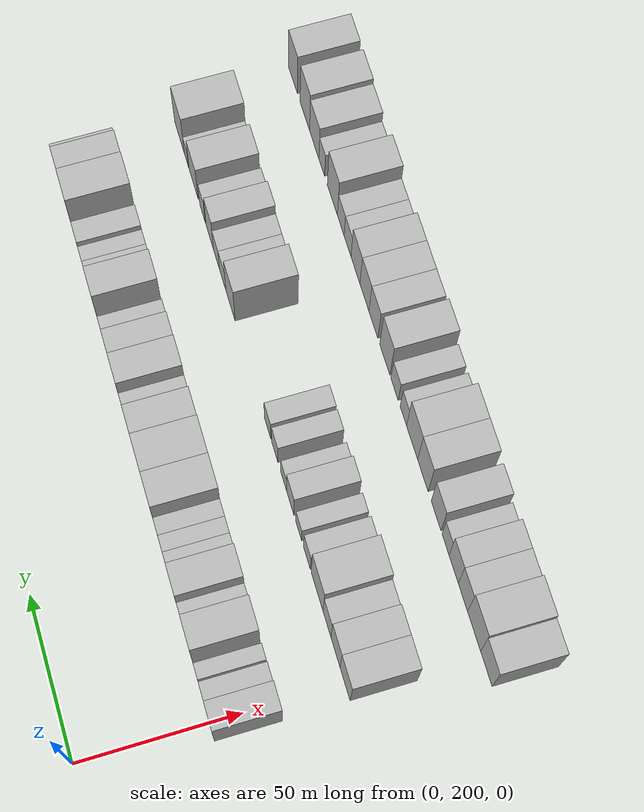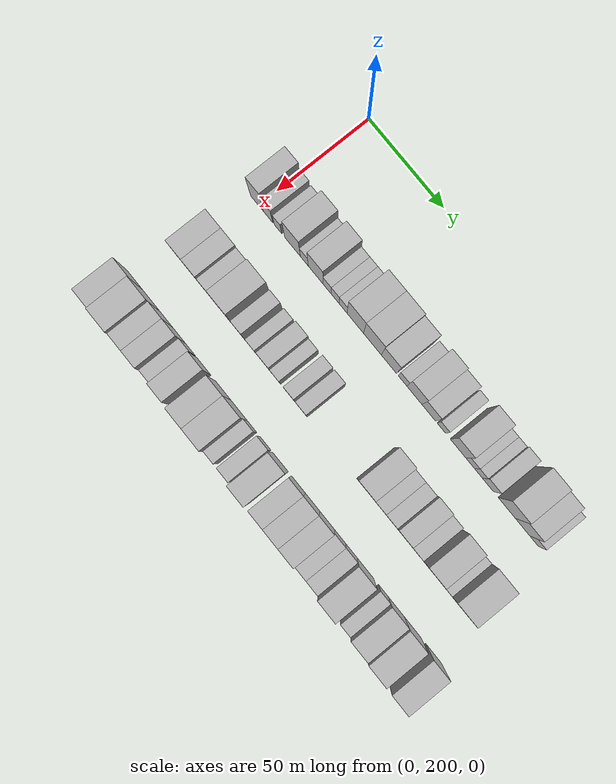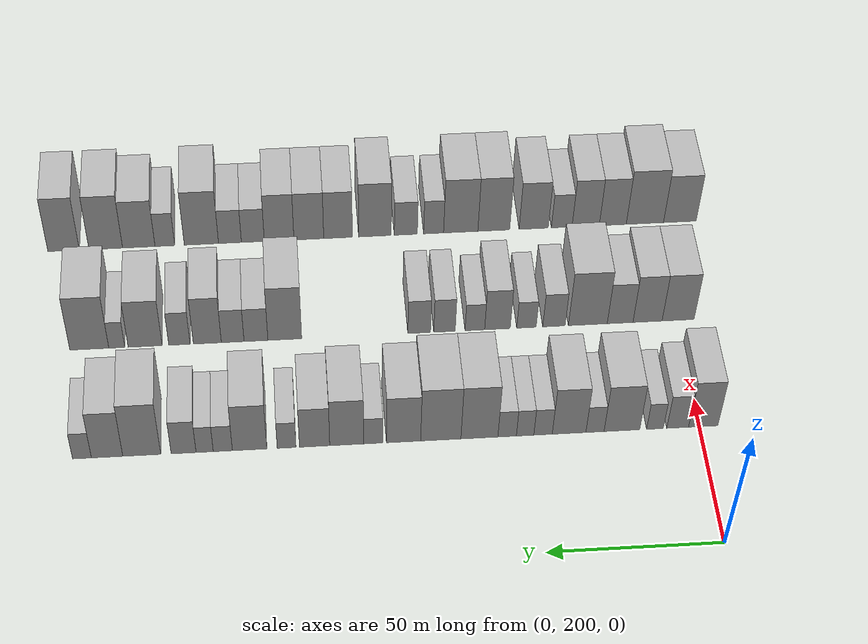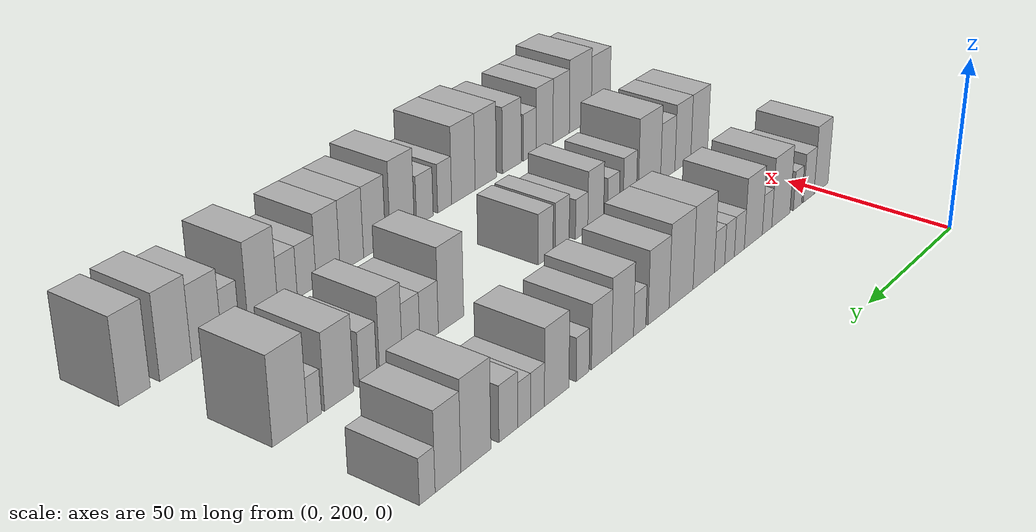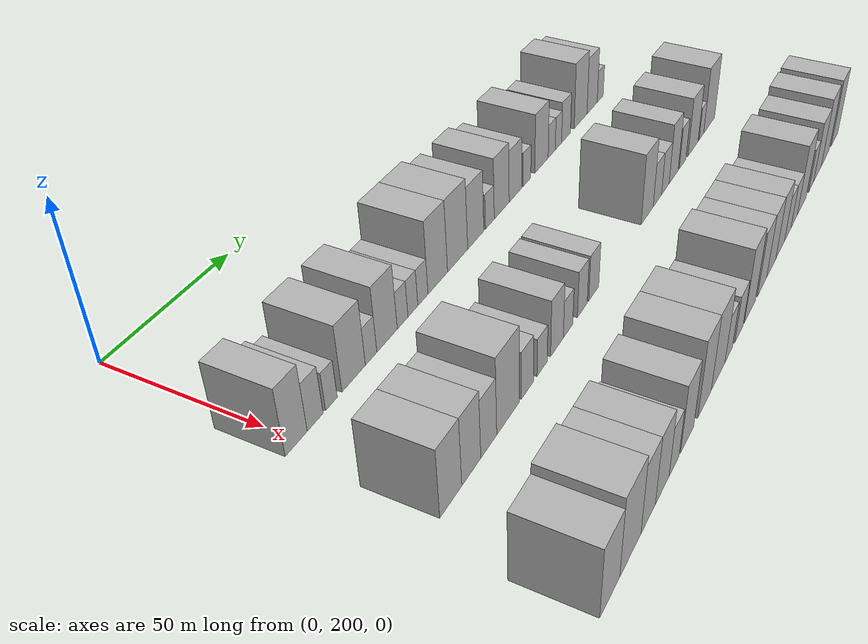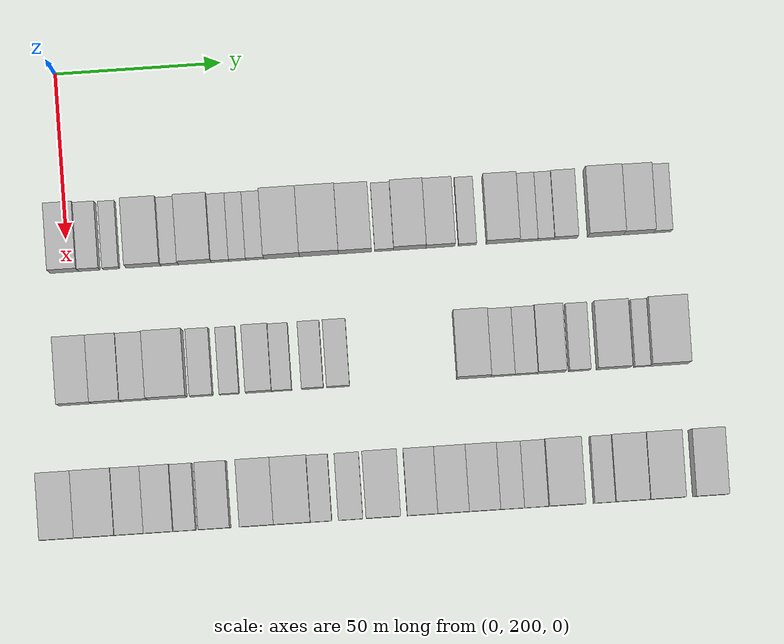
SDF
<sdf version="1.6">
 <world name="default">
  <model name="building_63">
   <static>1</static>
   <pose>50.0000 198.9835 0 0.000000 0.000000 0.000000</pose>
   <link name="link">
    <pose>0 0 10.50 0 0 0</pose>
    <collision name="collision"><geometry><box><size>20.0000 8.6089 21.0000</size></box></geometry></collision>
    <visual name="visual">
     <cast_shadows>0</cast_shadows>
     <geometry><box><size>20.0000 8.6089 21.0000</size></box></geometry>
     <material>
      <script>
       <uri>model://HANNAS_wall/materials/scripts</uri>
       <uri>model://HANNAS_wall/materials/textures</uri>
       <name>vrc/HANNAS_wall</name>
      </script>
     </material>
    </visual>
   </link>
  </model>
  <model name="building_64">
   <static>1</static>
   <pose>50.0000 206.4948 0 0.000000 0.000000 0.000000</pose>
   <link name="link">
    <pose>0 0 7.50 0 0 0</pose>
    <collision name="collision"><geometry><box><size>20.0000 6.4135 15.0000</size></box></geometry></collision>
    <visual name="visual">
     <cast_shadows>0</cast_shadows>
     <geometry><box><size>20.0000 6.4135 15.0000</size></box></geometry>
     <material>
      <script>
       <uri>model://HANNAS_wall/materials/scripts</uri>
       <uri>model://HANNAS_wall/materials/textures</uri>
       <name>vrc/HANNAS_wall</name>
      </script>
     </material>
    </visual>
   </link>
  </model>
  <model name="building_65">
   <static>1</static>
   <pose>50.0000 213.1671 0 0.000000 0.000000 0.000000</pose>
   <link name="link">
    <pose>0 0 6.00 0 0 0</pose>
    <collision name="collision"><geometry><box><size>20.0000 4.9312 12.0000</size></box></geometry></collision>
    <visual name="visual">
     <cast_shadows>0</cast_shadows>
     <geometry><box><size>20.0000 4.9312 12.0000</size></box></geometry>
     <material>
      <script>
       <uri>model://HANNAS_wall/materials/scripts</uri>
       <uri>model://HANNAS_wall/materials/textures</uri>
       <name>vrc/HANNAS_wall</name>
      </script>
     </material>
    </visual>
   </link>
  </model>
  <model name="building_66">
   <static>1</static>
   <pose>50.0000 222.8594 0 0.000000 0.000000 0.000000</pose>
   <link name="link">
    <pose>0 0 10.50 0 0 0</pose>
    <collision name="collision"><geometry><box><size>20.0000 10.4533 21.0000</size></box></geometry></collision>
    <visual name="visual">
     <cast_shadows>0</cast_shadows>
     <geometry><box><size>20.0000 10.4533 21.0000</size></box></geometry>
     <material>
      <script>
       <uri>model://HANNAS_wall/materials/scripts</uri>
       <uri>model://HANNAS_wall/materials/textures</uri>
       <name>vrc/HANNAS_wall</name>
      </script>
     </material>
    </visual>
   </link>
  </model>
  <model name="building_67">
   <static>1</static>
   <pose>50.0000 230.7451 0 0.000000 0.000000 0.000000</pose>
   <link name="link">
    <pose>0 0 6.00 0 0 0</pose>
    <collision name="collision"><geometry><box><size>20.0000 5.3181 12.0000</size></box></geometry></collision>
    <visual name="visual">
     <cast_shadows>0</cast_shadows>
     <geometry><box><size>20.0000 5.3181 12.0000</size></box></geometry>
     <material>
      <script>
       <uri>model://HANNAS_wall/materials/scripts</uri>
       <uri>model://HANNAS_wall/materials/textures</uri>
       <name>vrc/HANNAS_wall</name>
      </script>
     </material>
    </visual>
   </link>
  </model>
  <model name="building_68">
   <static>1</static>
   <pose>50.0000 238.3316 0 0.000000 0.000000 0.000000</pose>
   <link name="link">
    <pose>0 0 10.50 0 0 0</pose>
    <collision name="collision"><geometry><box><size>20.0000 9.8549 21.0000</size></box></geometry></collision>
    <visual name="visual">
     <cast_shadows>0</cast_shadows>
     <geometry><box><size>20.0000 9.8549 21.0000</size></box></geometry>
     <material>
      <script>
       <uri>model://HANNAS_wall/materials/scripts</uri>
       <uri>model://HANNAS_wall/materials/textures</uri>
       <name>vrc/HANNAS_wall</name>
      </script>
     </material>
    </visual>
   </link>
  </model>
  <model name="building_69">
   <static>1</static>
   <pose>50.0000 245.9419 0 0.000000 0.000000 0.000000</pose>
   <link name="link">
    <pose>0 0 6.00 0 0 0</pose>
    <collision name="collision"><geometry><box><size>20.0000 5.3658 12.0000</size></box></geometry></collision>
    <visual name="visual">
     <cast_shadows>0</cast_shadows>
     <geometry><box><size>20.0000 5.3658 12.0000</size></box></geometry>
     <material>
      <script>
       <uri>model://HANNAS_wall/materials/scripts</uri>
       <uri>model://HANNAS_wall/materials/textures</uri>
       <name>vrc/HANNAS_wall</name>
      </script>
     </material>
    </visual>
   </link>
  </model>
  <model name="building_70">
   <static>1</static>
   <pose>50.0000 251.1717 0 0.000000 0.000000 0.000000</pose>
   <link name="link">
    <pose>0 0 6.00 0 0 0</pose>
    <collision name="collision"><geometry><box><size>20.0000 5.0938 12.0000</size></box></geometry></collision>
    <visual name="visual">
     <cast_shadows>0</cast_shadows>
     <geometry><box><size>20.0000 5.0938 12.0000</size></box></geometry>
     <material>
      <script>
       <uri>model://HANNAS_wall/materials/scripts</uri>
       <uri>model://HANNAS_wall/materials/textures</uri>
       <name>vrc/HANNAS_wall</name>
      </script>
     </material>
    </visual>
   </link>
  </model>
  <model name="building_71">
   <static>1</static>
   <pose>50.0000 256.4149 0 0.000000 0.000000 0.000000</pose>
   <link name="link">
    <pose>0 0 6.00 0 0 0</pose>
    <collision name="collision"><geometry><box><size>20.0000 5.3924 12.0000</size></box></geometry></collision>
    <visual name="visual">
     <cast_shadows>0</cast_shadows>
     <geometry><box><size>20.0000 5.3924 12.0000</size></box></geometry>
     <material>
      <script>
       <uri>model://HANNAS_wall/materials/scripts</uri>
       <uri>model://HANNAS_wall/materials/textures</uri>
       <name>vrc/HANNAS_wall</name>
      </script>
     </material>
    </visual>
   </link>
  </model>
  <model name="building_72">
   <static>1</static>
   <pose>50.0000 264.4994 0 0.000000 0.000000 0.000000</pose>
   <link name="link">
    <pose>0 0 12.00 0 0 0</pose>
    <collision name="collision"><geometry><box><size>20.0000 10.7767 24.0000</size></box></geometry></collision>
    <visual name="visual">
     <cast_shadows>0</cast_shadows>
     <geometry><box><size>20.0000 10.7767 24.0000</size></box></geometry>
     <material>
      <script>
       <uri>model://HANNAS_wall/materials/scripts</uri>
       <uri>model://HANNAS_wall/materials/textures</uri>
       <name>vrc/HANNAS_wall</name>
      </script>
     </material>
    </visual>
   </link>
  </model>
  <model name="building_73">
   <static>1</static>
   <pose>50.0000 275.7507 0 0.000000 0.000000 0.000000</pose>
   <link name="link">
    <pose>0 0 12.00 0 0 0</pose>
    <collision name="collision"><geometry><box><size>20.0000 11.7258 24.0000</size></box></geometry></collision>
    <visual name="visual">
     <cast_shadows>0</cast_shadows>
     <geometry><box><size>20.0000 11.7258 24.0000</size></box></geometry>
     <material>
      <script>
       <uri>model://HANNAS_wall/materials/scripts</uri>
       <uri>model://HANNAS_wall/materials/textures</uri>
       <name>vrc/HANNAS_wall</name>
      </script>
     </material>
    </visual>
   </link>
  </model>
  <model name="building_74">
   <static>1</static>
   <pose>50.0000 286.5745 0 0.000000 0.000000 0.000000</pose>
   <link name="link">
    <pose>0 0 10.50 0 0 0</pose>
    <collision name="collision"><geometry><box><size>20.0000 9.9219 21.0000</size></box></geometry></collision>
    <visual name="visual">
     <cast_shadows>0</cast_shadows>
     <geometry><box><size>20.0000 9.9219 21.0000</size></box></geometry>
     <material>
      <script>
       <uri>model://HANNAS_wall/materials/scripts</uri>
       <uri>model://HANNAS_wall/materials/textures</uri>
       <name>vrc/HANNAS_wall</name>
      </script>
     </material>
    </visual>
   </link>
  </model>
  <model name="building_75">
   <static>1</static>
   <pose>50.0000 295.3598 0 0.000000 0.000000 0.000000</pose>
   <link name="link">
    <pose>0 0 6.00 0 0 0</pose>
    <collision name="collision"><geometry><box><size>20.0000 5.6487 12.0000</size></box></geometry></collision>
    <visual name="visual">
     <cast_shadows>0</cast_shadows>
     <geometry><box><size>20.0000 5.6487 12.0000</size></box></geometry>
     <material>
      <script>
       <uri>model://HANNAS_wall/materials/scripts</uri>
       <uri>model://HANNAS_wall/materials/textures</uri>
       <name>vrc/HANNAS_wall</name>
      </script>
     </material>
    </visual>
   </link>
  </model>
  <model name="building_76">
   <static>1</static>
   <pose>50.0000 303.0805 0 0.000000 0.000000 0.000000</pose>
   <link name="link">
    <pose>0 0 10.50 0 0 0</pose>
    <collision name="collision"><geometry><box><size>20.0000 9.7928 21.0000</size></box></geometry></collision>
    <visual name="visual">
     <cast_shadows>0</cast_shadows>
     <geometry><box><size>20.0000 9.7928 21.0000</size></box></geometry>
     <material>
      <script>
       <uri>model://HANNAS_wall/materials/scripts</uri>
       <uri>model://HANNAS_wall/materials/textures</uri>
       <name>vrc/HANNAS_wall</name>
      </script>
     </material>
    </visual>
   </link>
  </model>
  <model name="building_77">
   <static>1</static>
   <pose>50.0000 312.3498 0 0.000000 0.000000 0.000000</pose>
   <link name="link">
    <pose>0 0 9.00 0 0 0</pose>
    <collision name="collision"><geometry><box><size>20.0000 8.7457 18.0000</size></box></geometry></collision>
    <visual name="visual">
     <cast_shadows>0</cast_shadows>
     <geometry><box><size>20.0000 8.7457 18.0000</size></box></geometry>
     <material>
      <script>
       <uri>model://HANNAS_wall/materials/scripts</uri>
       <uri>model://HANNAS_wall/materials/textures</uri>
       <name>vrc/HANNAS_wall</name>
      </script>
     </material>
    </visual>
   </link>
  </model>
  <model name="building_78">
   <static>1</static>
   <pose>50.0000 320.4351 0 0.000000 0.000000 0.000000</pose>
   <link name="link">
    <pose>0 0 6.00 0 0 0</pose>
    <collision name="collision"><geometry><box><size>20.0000 5.4249 12.0000</size></box></geometry></collision>
    <visual name="visual">
     <cast_shadows>0</cast_shadows>
     <geometry><box><size>20.0000 5.4249 12.0000</size></box></geometry>
     <material>
      <script>
       <uri>model://HANNAS_wall/materials/scripts</uri>
       <uri>model://HANNAS_wall/materials/textures</uri>
       <name>vrc/HANNAS_wall</name>
      </script>
     </material>
    </visual>
   </link>
  </model>
  <model name="building_79">
   <static>1</static>
   <pose>50.0000 331.1154 0 0.000000 0.000000 0.000000</pose>
   <link name="link">
    <pose>0 0 10.50 0 0 0</pose>
    <collision name="collision"><geometry><box><size>20.0000 9.9357 21.0000</size></box></geometry></collision>
    <visual name="visual">
     <cast_shadows>0</cast_shadows>
     <geometry><box><size>20.0000 9.9357 21.0000</size></box></geometry>
     <material>
      <script>
       <uri>model://HANNAS_wall/materials/scripts</uri>
       <uri>model://HANNAS_wall/materials/textures</uri>
       <name>vrc/HANNAS_wall</name>
      </script>
     </material>
    </visual>
   </link>
  </model>
  <model name="building_80">
   <static>1</static>
   <pose>50.0000 338.8402 0 0.000000 0.000000 0.000000</pose>
   <link name="link">
    <pose>0 0 6.00 0 0 0</pose>
    <collision name="collision"><geometry><box><size>20.0000 5.5140 12.0000</size></box></geometry></collision>
    <visual name="visual">
     <cast_shadows>0</cast_shadows>
     <geometry><box><size>20.0000 5.5140 12.0000</size></box></geometry>
     <material>
      <script>
       <uri>model://HANNAS_wall/materials/scripts</uri>
       <uri>model://HANNAS_wall/materials/textures</uri>
       <name>vrc/HANNAS_wall</name>
      </script>
     </material>
    </visual>
   </link>
  </model>
  <model name="building_81">
   <static>1</static>
   <pose>50.0000 344.0744 0 0.000000 0.000000 0.000000</pose>
   <link name="link">
    <pose>0 0 6.00 0 0 0</pose>
    <collision name="collision"><geometry><box><size>20.0000 4.9543 12.0000</size></box></geometry></collision>
    <visual name="visual">
     <cast_shadows>0</cast_shadows>
     <geometry><box><size>20.0000 4.9543 12.0000</size></box></geometry>
     <material>
      <script>
       <uri>model://HANNAS_wall/materials/scripts</uri>
       <uri>model://HANNAS_wall/materials/textures</uri>
       <name>vrc/HANNAS_wall</name>
      </script>
     </material>
    </visual>
   </link>
  </model>
  <model name="building_82">
   <static>1</static>
   <pose>50.0000 350.1334 0 0.000000 0.000000 0.000000</pose>
   <link name="link">
    <pose>0 0 7.50 0 0 0</pose>
    <collision name="collision"><geometry><box><size>20.0000 7.1637 15.0000</size></box></geometry></collision>
    <visual name="visual">
     <cast_shadows>0</cast_shadows>
     <geometry><box><size>20.0000 7.1637 15.0000</size></box></geometry>
     <material>
      <script>
       <uri>model://HANNAS_wall/materials/scripts</uri>
       <uri>model://HANNAS_wall/materials/textures</uri>
       <name>vrc/HANNAS_wall</name>
      </script>
     </material>
    </visual>
   </link>
  </model>
  <model name="building_83">
   <static>1</static>
   <pose>50.0000 362.1607 0 0.000000 0.000000 0.000000</pose>
   <link name="link">
    <pose>0 0 12.00 0 0 0</pose>
    <collision name="collision"><geometry><box><size>20.0000 10.8908 24.0000</size></box></geometry></collision>
    <visual name="visual">
     <cast_shadows>0</cast_shadows>
     <geometry><box><size>20.0000 10.8908 24.0000</size></box></geometry>
     <material>
      <script>
       <uri>model://HANNAS_wall/materials/scripts</uri>
       <uri>model://HANNAS_wall/materials/textures</uri>
       <name>vrc/HANNAS_wall</name>
      </script>
     </material>
    </visual>
   </link>
  </model>
  <model name="building_84">
   <static>1</static>
   <pose>50.0000 372.1131 0 0.000000 0.000000 0.000000</pose>
   <link name="link">
    <pose>0 0 10.50 0 0 0</pose>
    <collision name="collision"><geometry><box><size>20.0000 9.0141 21.0000</size></box></geometry></collision>
    <visual name="visual">
     <cast_shadows>0</cast_shadows>
     <geometry><box><size>20.0000 9.0141 21.0000</size></box></geometry>
     <material>
      <script>
       <uri>model://HANNAS_wall/materials/scripts</uri>
       <uri>model://HANNAS_wall/materials/textures</uri>
       <name>vrc/HANNAS_wall</name>
      </script>
     </material>
    </visual>
   </link>
  </model>
  <model name="building_85">
   <static>1</static>
   <pose>50.0000 379.3196 0 0.000000 0.000000 0.000000</pose>
   <link name="link">
    <pose>0 0 6.00 0 0 0</pose>
    <collision name="collision"><geometry><box><size>20.0000 5.3989 12.0000</size></box></geometry></collision>
    <visual name="visual">
     <cast_shadows>0</cast_shadows>
     <geometry><box><size>20.0000 5.3989 12.0000</size></box></geometry>
     <material>
      <script>
       <uri>model://HANNAS_wall/materials/scripts</uri>
       <uri>model://HANNAS_wall/materials/textures</uri>
       <name>vrc/HANNAS_wall</name>
      </script>
     </material>
    </visual>
   </link>
  </model>
  <model name="building_147">
   <static>1</static>
   <pose>90.0000 199.6882 0 0.000000 0.000000 0.000000</pose>
   <link name="link">
    <pose>0 0 10.50 0 0 0</pose>
    <collision name="collision"><geometry><box><size>20.0000 9.8433 21.0000</size></box></geometry></collision>
    <visual name="visual">
     <cast_shadows>0</cast_shadows>
     <geometry><box><size>20.0000 9.8433 21.0000</size></box></geometry>
     <material>
      <script>
       <uri>model://HANNAS_wall/materials/scripts</uri>
       <uri>model://HANNAS_wall/materials/textures</uri>
       <name>vrc/HANNAS_wall</name>
      </script>
     </material>
    </visual>
   </link>
  </model>
  <model name="building_148">
   <static>1</static>
   <pose>90.0000 209.0764 0 0.000000 0.000000 0.000000</pose>
   <link name="link">
    <pose>0 0 10.50 0 0 0</pose>
    <collision name="collision"><geometry><box><size>20.0000 8.9332 21.0000</size></box></geometry></collision>
    <visual name="visual">
     <cast_shadows>0</cast_shadows>
     <geometry><box><size>20.0000 8.9332 21.0000</size></box></geometry>
     <material>
      <script>
       <uri>model://HANNAS_wall/materials/scripts</uri>
       <uri>model://HANNAS_wall/materials/textures</uri>
       <name>vrc/HANNAS_wall</name>
      </script>
     </material>
    </visual>
   </link>
  </model>
  <model name="building_149">
   <static>1</static>
   <pose>90.0000 217.4925 0 0.000000 0.000000 0.000000</pose>
   <link name="link">
    <pose>0 0 9.00 0 0 0</pose>
    <collision name="collision"><geometry><box><size>20.0000 7.8991 18.0000</size></box></geometry></collision>
    <visual name="visual">
     <cast_shadows>0</cast_shadows>
     <geometry><box><size>20.0000 7.8991 18.0000</size></box></geometry>
     <material>
      <script>
       <uri>model://HANNAS_wall/materials/scripts</uri>
       <uri>model://HANNAS_wall/materials/textures</uri>
       <name>vrc/HANNAS_wall</name>
      </script>
     </material>
    </visual>
   </link>
  </model>
  <model name="building_150">
   <static>1</static>
   <pose>90.0000 227.3966 0 0.000000 0.000000 0.000000</pose>
   <link name="link">
    <pose>0 0 12.00 0 0 0</pose>
    <collision name="collision"><geometry><box><size>20.0000 11.9089 24.0000</size></box></geometry></collision>
    <visual name="visual">
     <cast_shadows>0</cast_shadows>
     <geometry><box><size>20.0000 11.9089 24.0000</size></box></geometry>
     <material>
      <script>
       <uri>model://HANNAS_wall/materials/scripts</uri>
       <uri>model://HANNAS_wall/materials/textures</uri>
       <name>vrc/HANNAS_wall</name>
      </script>
     </material>
    </visual>
   </link>
  </model>
  <model name="building_151">
   <static>1</static>
   <pose>90.0000 237.7785 0 0.000000 0.000000 0.000000</pose>
   <link name="link">
    <pose>0 0 7.50 0 0 0</pose>
    <collision name="collision"><geometry><box><size>20.0000 6.8550 15.0000</size></box></geometry></collision>
    <visual name="visual">
     <cast_shadows>0</cast_shadows>
     <geometry><box><size>20.0000 6.8550 15.0000</size></box></geometry>
     <material>
      <script>
       <uri>model://HANNAS_wall/materials/scripts</uri>
       <uri>model://HANNAS_wall/materials/textures</uri>
       <name>vrc/HANNAS_wall</name>
      </script>
     </material>
    </visual>
   </link>
  </model>
  <model name="building_152">
   <static>1</static>
   <pose>90.0000 246.1682 0 0.000000 0.000000 0.000000</pose>
   <link name="link">
    <pose>0 0 6.00 0 0 0</pose>
    <collision name="collision"><geometry><box><size>20.0000 5.9244 12.0000</size></box></geometry></collision>
    <visual name="visual">
     <cast_shadows>0</cast_shadows>
     <geometry><box><size>20.0000 5.9244 12.0000</size></box></geometry>
     <material>
      <script>
       <uri>model://HANNAS_wall/materials/scripts</uri>
       <uri>model://HANNAS_wall/materials/textures</uri>
       <name>vrc/HANNAS_wall</name>
      </script>
     </material>
    </visual>
   </link>
  </model>
  <model name="building_153">
   <static>1</static>
   <pose>90.0000 255.0304 0 0.000000 0.000000 0.000000</pose>
   <link name="link">
    <pose>0 0 9.00 0 0 0</pose>
    <collision name="collision"><geometry><box><size>20.0000 7.7999 18.0000</size></box></geometry></collision>
    <visual name="visual">
     <cast_shadows>0</cast_shadows>
     <geometry><box><size>20.0000 7.7999 18.0000</size></box></geometry>
     <material>
      <script>
       <uri>model://HANNAS_wall/materials/scripts</uri>
       <uri>model://HANNAS_wall/materials/textures</uri>
       <name>vrc/HANNAS_wall</name>
      </script>
     </material>
    </visual>
   </link>
  </model>
  <model name="building_154">
   <static>1</static>
   <pose>90.0000 261.9214 0 0.000000 0.000000 0.000000</pose>
   <link name="link">
    <pose>0 0 6.00 0 0 0</pose>
    <collision name="collision"><geometry><box><size>20.0000 5.9821 12.0000</size></box></geometry></collision>
    <visual name="visual">
     <cast_shadows>0</cast_shadows>
     <geometry><box><size>20.0000 5.9821 12.0000</size></box></geometry>
     <material>
      <script>
       <uri>model://HANNAS_wall/materials/scripts</uri>
       <uri>model://HANNAS_wall/materials/textures</uri>
       <name>vrc/HANNAS_wall</name>
      </script>
     </material>
    </visual>
   </link>
  </model>
  <model name="building_155">
   <static>1</static>
   <pose>90.0000 271.1778 0 0.000000 0.000000 0.000000</pose>
   <link name="link">
    <pose>0 0 7.50 0 0 0</pose>
    <collision name="collision"><geometry><box><size>20.0000 6.5308 15.0000</size></box></geometry></collision>
    <visual name="visual">
     <cast_shadows>0</cast_shadows>
     <geometry><box><size>20.0000 6.5308 15.0000</size></box></geometry>
     <material>
      <script>
       <uri>model://HANNAS_wall/materials/scripts</uri>
       <uri>model://HANNAS_wall/materials/textures</uri>
       <name>vrc/HANNAS_wall</name>
      </script>
     </material>
    </visual>
   </link>
  </model>
  <model name="building_156">
   <static>1</static>
   <pose>90.0000 278.8805 0 0.000000 0.000000 0.000000</pose>
   <link name="link">
    <pose>0 0 7.50 0 0 0</pose>
    <collision name="collision"><geometry><box><size>20.0000 6.8746 15.0000</size></box></geometry></collision>
    <visual name="visual">
     <cast_shadows>0</cast_shadows>
     <geometry><box><size>20.0000 6.8746 15.0000</size></box></geometry>
     <material>
      <script>
       <uri>model://HANNAS_wall/materials/scripts</uri>
       <uri>model://HANNAS_wall/materials/textures</uri>
       <name>vrc/HANNAS_wall</name>
      </script>
     </material>
    </visual>
   </link>
  </model>
  <model name="building_157">
   <static>1</static>
   <pose>90.0000 319.6241 0 0.000000 0.000000 0.000000</pose>
   <link name="link">
    <pose>0 0 12.00 0 0 0</pose>
    <collision name="collision"><geometry><box><size>20.0000 10.2042 24.0000</size></box></geometry></collision>
    <visual name="visual">
     <cast_shadows>0</cast_shadows>
     <geometry><box><size>20.0000 10.2042 24.0000</size></box></geometry>
     <material>
      <script>
       <uri>model://HANNAS_wall/materials/scripts</uri>
       <uri>model://HANNAS_wall/materials/textures</uri>
       <name>vrc/HANNAS_wall</name>
      </script>
     </material>
    </visual>
   </link>
  </model>
  <model name="building_158">
   <static>1</static>
   <pose>90.0000 328.3345 0 0.000000 0.000000 0.000000</pose>
   <link name="link">
    <pose>0 0 7.50 0 0 0</pose>
    <collision name="collision"><geometry><box><size>20.0000 7.2166 15.0000</size></box></geometry></collision>
    <visual name="visual">
     <cast_shadows>0</cast_shadows>
     <geometry><box><size>20.0000 7.2166 15.0000</size></box></geometry>
     <material>
      <script>
       <uri>model://HANNAS_wall/materials/scripts</uri>
       <uri>model://HANNAS_wall/materials/textures</uri>
       <name>vrc/HANNAS_wall</name>
      </script>
     </material>
    </visual>
   </link>
  </model>
  <model name="building_159">
   <static>1</static>
   <pose>90.0000 335.3641 0 0.000000 0.000000 0.000000</pose>
   <link name="link">
    <pose>0 0 7.50 0 0 0</pose>
    <collision name="collision"><geometry><box><size>20.0000 6.8425 15.0000</size></box></geometry></collision>
    <visual name="visual">
     <cast_shadows>0</cast_shadows>
     <geometry><box><size>20.0000 6.8425 15.0000</size></box></geometry>
     <material>
      <script>
       <uri>model://HANNAS_wall/materials/scripts</uri>
       <uri>model://HANNAS_wall/materials/textures</uri>
       <name>vrc/HANNAS_wall</name>
      </script>
     </material>
    </visual>
   </link>
  </model>
  <model name="building_160">
   <static>1</static>
   <pose>90.0000 343.0022 0 0.000000 0.000000 0.000000</pose>
   <link name="link">
    <pose>0 0 10.50 0 0 0</pose>
    <collision name="collision"><geometry><box><size>20.0000 8.4337 21.0000</size></box></geometry></collision>
    <visual name="visual">
     <cast_shadows>0</cast_shadows>
     <geometry><box><size>20.0000 8.4337 21.0000</size></box></geometry>
     <material>
      <script>
       <uri>model://HANNAS_wall/materials/scripts</uri>
       <uri>model://HANNAS_wall/materials/textures</uri>
       <name>vrc/HANNAS_wall</name>
      </script>
     </material>
    </visual>
   </link>
  </model>
  <model name="building_161">
   <static>1</static>
   <pose>90.0000 351.4247 0 0.000000 0.000000 0.000000</pose>
   <link name="link">
    <pose>0 0 7.50 0 0 0</pose>
    <collision name="collision"><geometry><box><size>20.0000 6.4114 15.0000</size></box></geometry></collision>
    <visual name="visual">
     <cast_shadows>0</cast_shadows>
     <geometry><box><size>20.0000 6.4114 15.0000</size></box></geometry>
     <material>
      <script>
       <uri>model://HANNAS_wall/materials/scripts</uri>
       <uri>model://HANNAS_wall/materials/textures</uri>
       <name>vrc/HANNAS_wall</name>
      </script>
     </material>
    </visual>
   </link>
  </model>
  <model name="building_162">
   <static>1</static>
   <pose>90.0000 361.7384 0 0.000000 0.000000 0.000000</pose>
   <link name="link">
    <pose>0 0 10.50 0 0 0</pose>
    <collision name="collision"><geometry><box><size>20.0000 10.2160 21.0000</size></box></geometry></collision>
    <visual name="visual">
     <cast_shadows>0</cast_shadows>
     <geometry><box><size>20.0000 10.2160 21.0000</size></box></geometry>
     <material>
      <script>
       <uri>model://HANNAS_wall/materials/scripts</uri>
       <uri>model://HANNAS_wall/materials/textures</uri>
       <name>vrc/HANNAS_wall</name>
      </script>
     </material>
    </visual>
   </link>
  </model>
  <model name="building_163">
   <static>1</static>
   <pose>90.0000 370.2585 0 0.000000 0.000000 0.000000</pose>
   <link name="link">
    <pose>0 0 6.00 0 0 0</pose>
    <collision name="collision"><geometry><box><size>20.0000 4.8241 12.0000</size></box></geometry></collision>
    <visual name="visual">
     <cast_shadows>0</cast_shadows>
     <geometry><box><size>20.0000 4.8241 12.0000</size></box></geometry>
     <material>
      <script>
       <uri>model://HANNAS_wall/materials/scripts</uri>
       <uri>model://HANNAS_wall/materials/textures</uri>
       <name>vrc/HANNAS_wall</name>
      </script>
     </material>
    </visual>
   </link>
  </model>
  <model name="building_164">
   <static>1</static>
   <pose>90.0000 378.5024 0 0.000000 0.000000 0.000000</pose>
   <link name="link">
    <pose>0 0 12.00 0 0 0</pose>
    <collision name="collision"><geometry><box><size>20.0000 11.6638 24.0000</size></box></geometry></collision>
    <visual name="visual">
     <cast_shadows>0</cast_shadows>
     <geometry><box><size>20.0000 11.6638 24.0000</size></box></geometry>
     <material>
      <script>
       <uri>model://HANNAS_wall/materials/scripts</uri>
       <uri>model://HANNAS_wall/materials/textures</uri>
       <name>vrc/HANNAS_wall</name>
      </script>
     </material>
    </visual>
   </link>
  </model>
  <model name="building_227">
   <static>1</static>
   <pose>130.0000 192.4375 0 0.000000 0.000000 0.000000</pose>
   <link name="link">
    <pose>0 0 10.50 0 0 0</pose>
    <collision name="collision"><geometry><box><size>20.0000 10.4764 21.0000</size></box></geometry></collision>
    <visual name="visual">
     <cast_shadows>0</cast_shadows>
     <geometry><box><size>20.0000 10.4764 21.0000</size></box></geometry>
     <material>
      <script>
       <uri>model://HANNAS_wall/materials/scripts</uri>
       <uri>model://HANNAS_wall/materials/textures</uri>
       <name>vrc/HANNAS_wall</name>
      </script>
     </material>
    </visual>
   </link>
  </model>
  <model name="building_228">
   <static>1</static>
   <pose>130.0000 203.6553 0 0.000000 0.000000 0.000000</pose>
   <link name="link">
    <pose>0 0 12.00 0 0 0</pose>
    <collision name="collision"><geometry><box><size>20.0000 11.9592 24.0000</size></box></geometry></collision>
    <visual name="visual">
     <cast_shadows>0</cast_shadows>
     <geometry><box><size>20.0000 11.9592 24.0000</size></box></geometry>
     <material>
      <script>
       <uri>model://HANNAS_wall/materials/scripts</uri>
       <uri>model://HANNAS_wall/materials/textures</uri>
       <name>vrc/HANNAS_wall</name>
      </script>
     </material>
    </visual>
   </link>
  </model>
  <model name="building_229">
   <static>1</static>
   <pose>130.0000 213.9617 0 0.000000 0.000000 0.000000</pose>
   <link name="link">
    <pose>0 0 10.50 0 0 0</pose>
    <collision name="collision"><geometry><box><size>20.0000 8.6537 21.0000</size></box></geometry></collision>
    <visual name="visual">
     <cast_shadows>0</cast_shadows>
     <geometry><box><size>20.0000 8.6537 21.0000</size></box></geometry>
     <material>
      <script>
       <uri>model://HANNAS_wall/materials/scripts</uri>
       <uri>model://HANNAS_wall/materials/textures</uri>
       <name>vrc/HANNAS_wall</name>
      </script>
     </material>
    </visual>
   </link>
  </model>
  <model name="building_230">
   <static>1</static>
   <pose>130.0000 222.6467 0 0.000000 0.000000 0.000000</pose>
   <link name="link">
    <pose>0 0 10.50 0 0 0</pose>
    <collision name="collision"><geometry><box><size>20.0000 8.7162 21.0000</size></box></geometry></collision>
    <visual name="visual">
     <cast_shadows>0</cast_shadows>
     <geometry><box><size>20.0000 8.7162 21.0000</size></box></geometry>
     <material>
      <script>
       <uri>model://HANNAS_wall/materials/scripts</uri>
       <uri>model://HANNAS_wall/materials/textures</uri>
       <name>vrc/HANNAS_wall</name>
      </script>
     </material>
    </visual>
   </link>
  </model>
  <model name="building_231">
   <static>1</static>
   <pose>130.0000 230.3053 0 0.000000 0.000000 0.000000</pose>
   <link name="link">
    <pose>0 0 7.50 0 0 0</pose>
    <collision name="collision"><geometry><box><size>20.0000 6.6011 15.0000</size></box></geometry></collision>
    <visual name="visual">
     <cast_shadows>0</cast_shadows>
     <geometry><box><size>20.0000 6.6011 15.0000</size></box></geometry>
     <material>
      <script>
       <uri>model://HANNAS_wall/materials/scripts</uri>
       <uri>model://HANNAS_wall/materials/textures</uri>
       <name>vrc/HANNAS_wall</name>
      </script>
     </material>
    </visual>
   </link>
  </model>
  <model name="building_232">
   <static>1</static>
   <pose>130.0000 239.2595 0 0.000000 0.000000 0.000000</pose>
   <link name="link">
    <pose>0 0 10.50 0 0 0</pose>
    <collision name="collision"><geometry><box><size>20.0000 9.3071 21.0000</size></box></geometry></collision>
    <visual name="visual">
     <cast_shadows>0</cast_shadows>
     <geometry><box><size>20.0000 9.3071 21.0000</size></box></geometry>
     <material>
      <script>
       <uri>model://HANNAS_wall/materials/scripts</uri>
       <uri>model://HANNAS_wall/materials/textures</uri>
       <name>vrc/HANNAS_wall</name>
      </script>
     </material>
    </visual>
   </link>
  </model>
  <model name="building_233">
   <static>1</static>
   <pose>130.0000 251.9836 0 0.000000 0.000000 0.000000</pose>
   <link name="link">
    <pose>0 0 12.00 0 0 0</pose>
    <collision name="collision"><geometry><box><size>20.0000 10.1410 24.0000</size></box></geometry></collision>
    <visual name="visual">
     <cast_shadows>0</cast_shadows>
     <geometry><box><size>20.0000 10.1410 24.0000</size></box></geometry>
     <material>
      <script>
       <uri>model://HANNAS_wall/materials/scripts</uri>
       <uri>model://HANNAS_wall/materials/textures</uri>
       <name>vrc/HANNAS_wall</name>
      </script>
     </material>
    </visual>
   </link>
  </model>
  <model name="building_234">
   <static>1</static>
   <pose>130.0000 262.5127 0 0.000000 0.000000 0.000000</pose>
   <link name="link">
    <pose>0 0 12.00 0 0 0</pose>
    <collision name="collision"><geometry><box><size>20.0000 10.9172 24.0000</size></box></geometry></collision>
    <visual name="visual">
     <cast_shadows>0</cast_shadows>
     <geometry><box><size>20.0000 10.9172 24.0000</size></box></geometry>
     <material>
      <script>
       <uri>model://HANNAS_wall/materials/scripts</uri>
       <uri>model://HANNAS_wall/materials/textures</uri>
       <name>vrc/HANNAS_wall</name>
      </script>
     </material>
    </visual>
   </link>
  </model>
  <model name="building_235">
   <static>1</static>
   <pose>130.0000 271.1462 0 0.000000 0.000000 0.000000</pose>
   <link name="link">
    <pose>0 0 7.50 0 0 0</pose>
    <collision name="collision"><geometry><box><size>20.0000 6.3499 15.0000</size></box></geometry></collision>
    <visual name="visual">
     <cast_shadows>0</cast_shadows>
     <geometry><box><size>20.0000 6.3499 15.0000</size></box></geometry>
     <material>
      <script>
       <uri>model://HANNAS_wall/materials/scripts</uri>
       <uri>model://HANNAS_wall/materials/textures</uri>
       <name>vrc/HANNAS_wall</name>
      </script>
     </material>
    </visual>
   </link>
  </model>
  <model name="building_236">
   <static>1</static>
   <pose>130.0000 279.9738 0 0.000000 0.000000 0.000000</pose>
   <link name="link">
    <pose>0 0 7.50 0 0 0</pose>
    <collision name="collision"><geometry><box><size>20.0000 7.3053 15.0000</size></box></geometry></collision>
    <visual name="visual">
     <cast_shadows>0</cast_shadows>
     <geometry><box><size>20.0000 7.3053 15.0000</size></box></geometry>
     <material>
      <script>
       <uri>model://HANNAS_wall/materials/scripts</uri>
       <uri>model://HANNAS_wall/materials/textures</uri>
       <name>vrc/HANNAS_wall</name>
      </script>
     </material>
    </visual>
   </link>
  </model>
  <model name="building_237">
   <static>1</static>
   <pose>130.0000 289.7819 0 0.000000 0.000000 0.000000</pose>
   <link name="link">
    <pose>0 0 12.00 0 0 0</pose>
    <collision name="collision"><geometry><box><size>20.0000 10.3108 24.0000</size></box></geometry></collision>
    <visual name="visual">
     <cast_shadows>0</cast_shadows>
     <geometry><box><size>20.0000 10.3108 24.0000</size></box></geometry>
     <material>
      <script>
       <uri>model://HANNAS_wall/materials/scripts</uri>
       <uri>model://HANNAS_wall/materials/textures</uri>
       <name>vrc/HANNAS_wall</name>
      </script>
     </material>
    </visual>
   </link>
  </model>
  <model name="building_238">
   <static>1</static>
   <pose>130.0000 301.4701 0 0.000000 0.000000 0.000000</pose>
   <link name="link">
    <pose>0 0 10.50 0 0 0</pose>
    <collision name="collision"><geometry><box><size>20.0000 9.0655 21.0000</size></box></geometry></collision>
    <visual name="visual">
     <cast_shadows>0</cast_shadows>
     <geometry><box><size>20.0000 9.0655 21.0000</size></box></geometry>
     <material>
      <script>
       <uri>model://HANNAS_wall/materials/scripts</uri>
       <uri>model://HANNAS_wall/materials/textures</uri>
       <name>vrc/HANNAS_wall</name>
      </script>
     </material>
    </visual>
   </link>
  </model>
  <model name="building_239">
   <static>1</static>
   <pose>130.0000 310.7094 0 0.000000 0.000000 0.000000</pose>
   <link name="link">
    <pose>0 0 10.50 0 0 0</pose>
    <collision name="collision"><geometry><box><size>20.0000 9.4131 21.0000</size></box></geometry></collision>
    <visual name="visual">
     <cast_shadows>0</cast_shadows>
     <geometry><box><size>20.0000 9.4131 21.0000</size></box></geometry>
     <material>
      <script>
       <uri>model://HANNAS_wall/materials/scripts</uri>
       <uri>model://HANNAS_wall/materials/textures</uri>
       <name>vrc/HANNAS_wall</name>
      </script>
     </material>
    </visual>
   </link>
  </model>
  <model name="building_240">
   <static>1</static>
   <pose>130.0000 320.0836 0 0.000000 0.000000 0.000000</pose>
   <link name="link">
    <pose>0 0 10.50 0 0 0</pose>
    <collision name="collision"><geometry><box><size>20.0000 9.3353 21.0000</size></box></geometry></collision>
    <visual name="visual">
     <cast_shadows>0</cast_shadows>
     <geometry><box><size>20.0000 9.3353 21.0000</size></box></geometry>
     <material>
      <script>
       <uri>model://HANNAS_wall/materials/scripts</uri>
       <uri>model://HANNAS_wall/materials/textures</uri>
       <name>vrc/HANNAS_wall</name>
      </script>
     </material>
    </visual>
   </link>
  </model>
  <model name="building_241">
   <static>1</static>
   <pose>130.0000 328.3722 0 0.000000 0.000000 0.000000</pose>
   <link name="link">
    <pose>0 0 7.50 0 0 0</pose>
    <collision name="collision"><geometry><box><size>20.0000 7.2419 15.0000</size></box></geometry></collision>
    <visual name="visual">
     <cast_shadows>0</cast_shadows>
     <geometry><box><size>20.0000 7.2419 15.0000</size></box></geometry>
     <material>
      <script>
       <uri>model://HANNAS_wall/materials/scripts</uri>
       <uri>model://HANNAS_wall/materials/textures</uri>
       <name>vrc/HANNAS_wall</name>
      </script>
     </material>
    </visual>
   </link>
  </model>
  <model name="building_242">
   <static>1</static>
   <pose>130.0000 335.5976 0 0.000000 0.000000 0.000000</pose>
   <link name="link">
    <pose>0 0 7.50 0 0 0</pose>
    <collision name="collision"><geometry><box><size>20.0000 7.2087 15.0000</size></box></geometry></collision>
    <visual name="visual">
     <cast_shadows>0</cast_shadows>
     <geometry><box><size>20.0000 7.2087 15.0000</size></box></geometry>
     <material>
      <script>
       <uri>model://HANNAS_wall/materials/scripts</uri>
       <uri>model://HANNAS_wall/materials/textures</uri>
       <name>vrc/HANNAS_wall</name>
      </script>
     </material>
    </visual>
   </link>
  </model>
  <model name="building_243">
   <static>1</static>
   <pose>130.0000 344.5925 0 0.000000 0.000000 0.000000</pose>
   <link name="link">
    <pose>0 0 12.00 0 0 0</pose>
    <collision name="collision"><geometry><box><size>20.0000 10.7812 24.0000</size></box></geometry></collision>
    <visual name="visual">
     <cast_shadows>0</cast_shadows>
     <geometry><box><size>20.0000 10.7812 24.0000</size></box></geometry>
     <material>
      <script>
       <uri>model://HANNAS_wall/materials/scripts</uri>
       <uri>model://HANNAS_wall/materials/textures</uri>
       <name>vrc/HANNAS_wall</name>
      </script>
     </material>
    </visual>
   </link>
  </model>
  <model name="building_244">
   <static>1</static>
   <pose>130.0000 356.0820 0 0.000000 0.000000 0.000000</pose>
   <link name="link">
    <pose>0 0 7.50 0 0 0</pose>
    <collision name="collision"><geometry><box><size>20.0000 6.1978 15.0000</size></box></geometry></collision>
    <visual name="visual">
     <cast_shadows>0</cast_shadows>
     <geometry><box><size>20.0000 6.1978 15.0000</size></box></geometry>
     <material>
      <script>
       <uri>model://HANNAS_wall/materials/scripts</uri>
       <uri>model://HANNAS_wall/materials/textures</uri>
       <name>vrc/HANNAS_wall</name>
      </script>
     </material>
    </visual>
   </link>
  </model>
  <model name="building_245">
   <static>1</static>
   <pose>130.0000 364.2708 0 0.000000 0.000000 0.000000</pose>
   <link name="link">
    <pose>0 0 10.50 0 0 0</pose>
    <collision name="collision"><geometry><box><size>20.0000 10.1798 21.0000</size></box></geometry></collision>
    <visual name="visual">
     <cast_shadows>0</cast_shadows>
     <geometry><box><size>20.0000 10.1798 21.0000</size></box></geometry>
     <material>
      <script>
       <uri>model://HANNAS_wall/materials/scripts</uri>
       <uri>model://HANNAS_wall/materials/textures</uri>
       <name>vrc/HANNAS_wall</name>
      </script>
     </material>
    </visual>
   </link>
  </model>
  <model name="building_246">
   <static>1</static>
   <pose>130.0000 374.6410 0 0.000000 0.000000 0.000000</pose>
   <link name="link">
    <pose>0 0 12.00 0 0 0</pose>
    <collision name="collision"><geometry><box><size>20.0000 10.5606 24.0000</size></box></geometry></collision>
    <visual name="visual">
     <cast_shadows>0</cast_shadows>
     <geometry><box><size>20.0000 10.5606 24.0000</size></box></geometry>
     <material>
      <script>
       <uri>model://HANNAS_wall/materials/scripts</uri>
       <uri>model://HANNAS_wall/materials/textures</uri>
       <name>vrc/HANNAS_wall</name>
      </script>
     </material>
    </visual>
   </link>
  </model>
  <model name="building_247">
   <static>1</static>
   <pose>130.0000 387.8479 0 0.000000 0.000000 0.000000</pose>
   <link name="link">
    <pose>0 0 12.00 0 0 0</pose>
    <collision name="collision"><geometry><box><size>20.0000 9.8530 24.0000</size></box></geometry></collision>
    <visual name="visual">
     <cast_shadows>0</cast_shadows>
     <geometry><box><size>20.0000 9.8530 24.0000</size></box></geometry>
     <material>
      <script>
       <uri>model://HANNAS_wall/materials/scripts</uri>
       <uri>model://HANNAS_wall/materials/textures</uri>
       <name>vrc/HANNAS_wall</name>
      </script>
     </material>
    </visual>
   </link>
  </model>
 </world>
</sdf>
